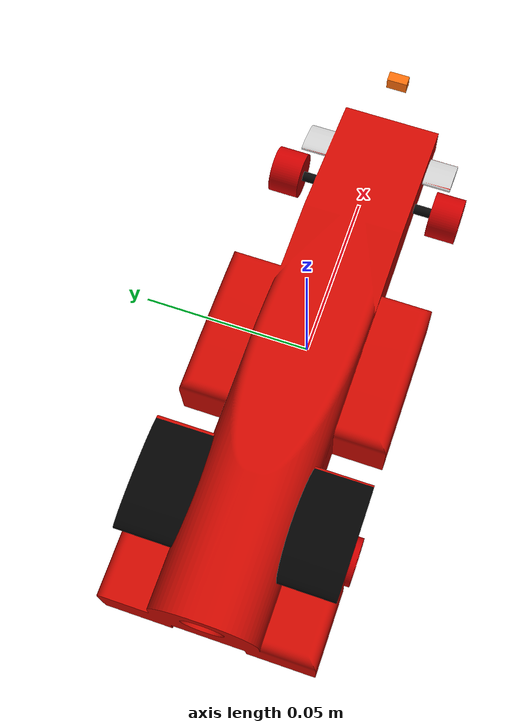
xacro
<?xml version="1.0"?>
<!-- source: https://github.com/srmainwaring/steer_bot/blob/master/steer_bot_description/urdf/wheel.xacro: -->

<robot name="f1_car" xmlns:xacro="http://wiki.ros.org/xacro">

  <!-- Include xacro for inertials, materials, wheels and camera -->
  <xacro:include filename="$(find race_car_description)/urdf/wheel.xacro"/>
  <xacro:include filename="$(find race_car_description)/urdf/camera.xacro"/>

  <xacro:property name="robot_namespace" value="/"/>

  <!-- Gazebo plugins -->
  <gazebo>
    <!-- Load ros_control plugin using the steer_bot_hardware_gazebo
    implementation of the hardware_interface::RobotHW -->
    <plugin name="gazebo_ros_control" filename="libgazebo_ros_control.so">
      <robotNamespace>${robot_namespace}</robotNamespace>
      <robotSimType>steer_bot_hardware_gazebo/SteerBotHardwareGazebo</robotSimType>
      <legacyModeNS>false</legacyModeNS>
    </plugin>
  </gazebo>

  <!-- Math constants -->
  <xacro:property name="deg_to_rad" value="0.01745329251994329577"/>
  <xacro:property name="mass_multiplier" value="1"/>
  <xacro:property name="scale" value="32"/>

  <!-- Robot base dimensions -->
  <xacro:property name="base_length" value="${5.5 / scale}" />
  <xacro:property name="base_width" value="${2.0 / scale}" />
  <xacro:property name="base_height" value="${1.0 / scale}" />
  <xacro:property name="base_mass" value="${850 / (scale*scale*scale) * mass_multiplier}" />

  <!-- Wheel link dimensions -->
  <xacro:property name="wheel_radius" value="${18*0.0254/2 / scale}" />
  <xacro:property name="wheel_thickness" value="${0.35 / scale}" />
  <xacro:property name="wheel_mass" value="${10.5 / (scale*scale*scale) * mass_multiplier}" />

  <!-- Steering link dimensions -->
  <xacro:property name="steer_radius" value="${wheel_radius / 2}" />
  <xacro:property name="steer_thickness" value="${wheel_thickness / 4}" />
  <xacro:property name="steer_mass" value="${10.5 / (scale*scale*scale) * mass_multiplier}" />

  <!-- Axle positions -->
  <xacro:property name="wheelbase" value="${3.6 / scale}" />
  <xacro:property name="ride_height" value="${0.032 / scale}" />

  <xacro:property name="axle_offset_rear" value="${1.050 / scale}" />
  <xacro:property name="axle_offset_front" value="${base_length - axle_offset_rear - wheelbase}" />
  <xacro:property name="axle_height" value="${-base_height/2 - ride_height + wheel_radius}" />
  <xacro:property name="steer_offset" value="${steer_thickness}" />

  <!-- Camera dimensions -->
	<xacro:property name="camera_size" value="${0.2 / scale}"/>
	<xacro:property name="camera_width" value="${camera_size}"/>
	<xacro:property name="camera_thickness" value="${camera_size/2}"/>
	<xacro:property name="camera_height" value="${camera_size*2/3}"/>
	<xacro:property name="camera_mass" value="${1 / (scale*scale*scale) * mass_multiplier}"/>
	<xacro:property name="camera_forward_tilt_deg" value="0"/>
	<xacro:property name="camera_y" value="0"/>
	<xacro:property name="camera_x" value="${base_length/2 + camera_thickness/2}"/>
	<xacro:property name="camera_z" value="${base_height/2-camera_height/2}"/>

  <!-- Base link -->
  <link name="base_link">
    <visual>
      <origin xyz="0 0 0" rpy="0 0 0"/>
      <geometry>
        <mesh filename="package://race_car_gazebo/meshes/f1_car_body.dae"/>
      </geometry>
    </visual>
    <collision>
      <origin xyz="0 0 0" rpy="0 0 0"/>
      <geometry>
        <box size="${base_length} ${base_width} ${base_height}"/>
      </geometry>
    </collision>
    <xacro:solid_cuboid_inertial
        rpy="0 0 0" xyz="0 0 0"
        mass="${base_mass}"
        x="${base_length}" y="${base_width}" z="${base_height}" />
  </link>
  <!-- Colour -->

  <!-- Camera -->
  <xacro:camera
    parent="base_link"
    camera_width="${camera_width}"
    camera_thickness="${camera_thickness}"
    camera_height="${camera_height}"
    forward_tilt="${camera_forward_tilt_deg}">
    <origin xyz="${camera_x} ${camera_y} ${camera_z}"
            rpy="0 ${camera_forward_tilt_deg * deg_to_rad} 0"/>
  </xacro:camera>

  <!-- Front steer and rear wheel joints required for ackermann_steering_controller -->
  <xacro:front_steer
    name="front"
    parent="base"
    steer_radius="${steer_radius}"
    steer_thickness="${steer_thickness}"
    steer_mass="${steer_mass}"
    base_length="${base_length}"
    base_width="${base_width}"
    axle_offset="${axle_offset_front}"
    steer_height="${base_height/2+steer_offset}">
    <!-- steer_height="${wheel_radius+steer_offset}"> -->
  </xacro:front_steer>

  <xacro:rear_wheel
    name="rear"
    parent="base"
    wheel_radius="${wheel_radius}"
    wheel_thickness="${wheel_thickness}"
    wheel_mass="${wheel_mass}">
    <origin xyz="${-base_length/2+axle_offset_rear} 0 ${axle_height}" rpy="${-90 * deg_to_rad} 0 0"/>
  </xacro:rear_wheel>

  <!-- Steerable front wheels -->
  <xacro:front_wheel_lr
    name="front_right"
    parent="base"
    reflect="-1"
    wheel_radius="${wheel_radius}"
    wheel_thickness="${wheel_thickness}"
    wheel_mass="${wheel_mass}"
    steer_radius="${steer_radius}"
    steer_thickness="${steer_thickness}"
    steer_mass="${steer_mass}"
    base_length="${base_length}"
    base_width="${base_width}"
    axle_offset="${axle_offset_front}"
    steer_height="${base_height/2+steer_offset}"
    axle_height = "${axle_height}">
  </xacro:front_wheel_lr>
  <xacro:front_wheel_lr
    name="front_left"
    parent="base"
    reflect="1"
    wheel_radius="${wheel_radius}"
    wheel_thickness="${wheel_thickness}"
    wheel_mass="${wheel_mass}"
    steer_radius="${steer_radius}"
    steer_thickness="${steer_thickness}"
    steer_mass="${steer_mass}"
    base_length="${base_length}"
    base_width="${base_width}"
    axle_offset="${axle_offset_front}"
    steer_height="${base_height/2+steer_offset}"
    axle_height = "${axle_height}">
  </xacro:front_wheel_lr>

  <!-- Rear wheels -->
  <xacro:rear_wheel_lr
    name="rear_right"
    parent="base"
    reflect="-1"
    wheel_radius="${wheel_radius}"
    wheel_thickness="${wheel_thickness}"
    wheel_mass="${wheel_mass}"
    base_length="${base_length}"
    base_width="${base_width}"
    axle_offset="${axle_offset_rear}"
    axle_height="${axle_height}">
  </xacro:rear_wheel_lr>
  <xacro:rear_wheel_lr
    name="rear_left"
    parent="base"
    reflect="1"
    wheel_radius="${wheel_radius}"
    wheel_thickness="${wheel_thickness}"
    wheel_mass="${wheel_mass}"
    base_length="${base_length}"
    base_width="${base_width}"
    axle_offset="${axle_offset_rear}"
    axle_height="${axle_height}">
  </xacro:rear_wheel_lr>

</robot>

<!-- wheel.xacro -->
<!-- source: https://github.com/srmainwaring/steer_bot/blob/master/steer_bot_description/urdf/wheel.xacro: -->

<robot name="wheel" xmlns:xacro="http://wiki.ros.org/xacro">
  <!-- Include xacro for materials and inertials -->
  <xacro:include filename="$(find race_car_description)/urdf/materials.xacro"/>
  <xacro:include filename="$(find race_car_description)/urdf/inertials.xacro"/>

  <!-- Properties -->
  <xacro:property name="steer_effort" value="10.0"/>
  <xacro:property name="steer_velocity" value="5.0"/>
  <xacro:property name="steer_limit_deg" value="30.0"/>

  <!-- Bicycle model front steering link (required for steer_drive_controller) -->
  <xacro:macro name="front_steer"
    params="
      name
      parent
      steer_radius
      steer_thickness
      steer_mass
      base_length
      base_width
      axle_offset
      steer_height">
    <link name="${name}_steer_link">
      <collision>
        <origin xyz="0 0 0" rpy="0 0 0"/>
        <geometry>
          <cylinder radius="${steer_radius}" length="${steer_thickness}"/>
        </geometry>
      </collision>
      <xacro:solid_cylinder_inertial
          rpy="0 0 0" xyz="0 0 0"
          mass="${steer_mass}"
          radius="${steer_radius}" length="${steer_thickness}" />
    </link>

    <joint name="${name}_steer_joint" type="revolute">
      <parent link="${parent}_link"/>
      <child link="${name}_steer_link"/>
      <origin xyz="${base_length/2-axle_offset} 0 ${steer_height}" rpy="0 0 0"/>
      <axis xyz="0 0 1"/>
      <limit effort="${steer_effort}"
             lower="${steer_limit_deg * deg_to_rad * -1.0}" upper="${steer_limit_deg * deg_to_rad}"
             velocity="${steer_velocity}"/>
             <!-- lower="${-180.0 * deg_to_rad}" upper="${180.0 * deg_to_rad}" -->
    </joint>

  </xacro:macro>

  <!-- Car steering model front (steerable) wheel links (left/right) -->
  <xacro:macro name="front_wheel_lr"
    params="
      name
      parent
      reflect
      wheel_radius
      wheel_thickness
      wheel_mass
      steer_radius
      steer_thickness
      steer_mass
      base_length
      base_width
      axle_offset
      steer_height
      axle_height">
    <link name="${name}_steer_link">
      <collision>
        <origin xyz="0 0 0" rpy="0 0 0"/>
        <geometry>
          <cylinder radius="${steer_radius}" length="${steer_thickness}"/>
        </geometry>
      </collision>
      <xacro:solid_cylinder_inertial
          rpy="0 0 0" xyz="0 0 0"
          mass="${steer_mass}"
          radius="${steer_radius}" length="${steer_thickness}" />
    </link>

    <joint name="${name}_steer_joint" type="revolute">
      <parent link="${parent}_link"/>
      <child link="${name}_steer_link"/>
      <origin xyz="${base_length/2-axle_offset} ${reflect*(base_width/2-wheel_thickness/2)} ${steer_height}" rpy="0 0 0"/>
      <axis xyz="0 0 1"/>
      <limit effort="${steer_effort}"
             lower="${steer_limit_deg * deg_to_rad * -1.0}" upper="${steer_limit_deg * deg_to_rad}"
             velocity="${steer_velocity}"/>
    </joint>

    <link name="${name}_wheel_link">
      <visual>
        <origin xyz="0 0 0" rpy="${(1-reflect)/2 * 180 * deg_to_rad} 0 0"/>
        <geometry>
          <mesh filename="package://race_car_gazebo/meshes/f1_car_wheel_front.dae"/>
        </geometry>
        <material name="red" />
      </visual>
      <collision>
        <origin xyz="0 0 0" rpy="0 0 0"/>
        <geometry>
          <cylinder radius="${wheel_radius}" length="${wheel_thickness}"/>
        </geometry>
      </collision>
      <xacro:solid_cylinder_inertial
          rpy="0 0 0" xyz="0 0 0"
          mass="${wheel_mass}"
          radius="${wheel_radius}" length="${wheel_thickness}" />
    </link>

    <joint name="${name}_wheel_joint" type="continuous">
      <parent link="${name}_steer_link"/>
      <child link="${name}_wheel_link"/>
      <origin xyz="0 0 ${-steer_height + axle_height}" rpy="${-90 * deg_to_rad} 0 0"/>
      <axis xyz="0 0 1"/>
    </joint>

    <gazebo reference="${name}_wheel_link">
      <mu1 value="1.5"/>
			<mu2 value="1.5"/>
			<kp value="100000.0" />
			<kd value="10.0" />
			<fdir1 value="1 0 0"/>
      <dampingFactor value="0.70"/>
    </gazebo>
  </xacro:macro>

  <!-- Bicycle model rear wheel link (required for steer_drive_controller) -->
  <xacro:macro name="rear_wheel"
    params="
      name
      parent
      wheel_radius
      wheel_thickness
      wheel_mass
      *origin">
    <link name="${name}_wheel_link">
      <collision>
        <origin xyz="0 0 0" rpy="0 0 0"/>
        <geometry>
          <cylinder radius="${wheel_radius}" length="${wheel_thickness}"/>
        </geometry>
      </collision>
      <xacro:solid_cylinder_inertial
          rpy="0 0 0" xyz="0 0 0"
          mass="${wheel_mass}"
          radius="${wheel_radius}" length="${wheel_thickness}" />
    </link>

    <joint name="${name}_wheel_joint" type="continuous">
      <parent link="${parent}_link"/>
      <child link="${name}_wheel_link"/>
      <xacro:insert_block name="origin"/>
      <axis xyz="0 0 1"/>
    </joint>

  </xacro:macro>

  <!-- Bicycle model front wheel link (passive - no transmission) -->
  <xacro:macro name="front_wheel"
    params="
      name
      parent
      wheel_radius
      wheel_thickness
      wheel_mass
      *origin">
    <link name="${name}_wheel_link">
      <visual>
        <origin xyz="0 0 0" rpy="0 0 0"/>
        <geometry>
          <cylinder radius="${wheel_radius}" length="${wheel_thickness}"/>
        </geometry>
        <material name="yellow" />
      </visual>
      <collision>
        <origin xyz="0 0 0" rpy="0 0 0"/>
        <geometry>
          <cylinder radius="${wheel_radius}" length="${wheel_thickness}"/>
        </geometry>
      </collision>
      <xacro:solid_cylinder_inertial
          rpy="0 0 0" xyz="0 0 0"
          mass="${wheel_mass}"
          radius="${wheel_radius}" length="${wheel_thickness}" />
    </link>

    <joint name="${name}_wheel_joint" type="continuous">
      <parent link="${parent}_link"/>
      <child link="${name}_wheel_link"/>
      <xacro:insert_block name="origin"/>
      <axis xyz="0 0 1"/>
    </joint>

    <gazebo reference="${name}_wheel_link">
      <material>Gazebo/Yellow</material>
    </gazebo>

    <gazebo reference="${name}_wheel_joint">
      <provideFeedback>true</provideFeedback>
    </gazebo>
  </xacro:macro>

  <!-- Car steering model rear wheel links (left/right) -->
  <xacro:macro name="rear_wheel_lr"
    params="
      name
      parent
      reflect
      wheel_radius
      wheel_thickness
      wheel_mass
      base_length
      base_width
      axle_offset
      axle_height">
      <!-- *origin"> -->
    <link name="${name}_wheel_link">
      <visual>
        <origin xyz="0 0 0" rpy="${(1-reflect)/2 * 180 * deg_to_rad} 0 0"/>
        <geometry>
          <mesh filename="package://race_car_gazebo/meshes/f1_car_wheel_rear.dae"/>
        </geometry>
        <material name="red" />
      </visual>
      <collision>
        <origin xyz="0 0 0" rpy="0 0 0"/>
        <geometry>
          <cylinder radius="${wheel_radius}" length="${wheel_thickness}"/>
        </geometry>
      </collision>
      <xacro:solid_cylinder_inertial
          rpy="0 0 0" xyz="0 0 0"
          mass="${wheel_mass}"
          radius="${wheel_radius}" length="${wheel_thickness}" />
    </link>

    <joint name="${name}_wheel_joint" type="continuous">
      <parent link="${parent}_link"/>
      <child link="${name}_wheel_link"/>
      <origin xyz="${-base_length/2+axle_offset_rear} ${reflect * (+base_width/2-wheel_thickness/2)} ${axle_height}"
              rpy="${-90 * deg_to_rad} 0 0"/>
      <axis xyz="0 0 1"/>
    </joint>

    <gazebo reference="${name}_wheel_link">
      <mu1 value="1.5"/>
			<mu2 value="1.5"/>
			<kp value="100000.0" />
			<kd value="10.0" />
			<fdir1 value="1 0 0"/>
      <dampingFactor value="0.70"/>
    </gazebo>
  </xacro:macro>
</robot>

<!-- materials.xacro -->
<robot name="materials" xmlns:xacro="http://wiki.ros.org/xacro">
  <xacro:property name="include_guard_materials" default="true"/>
  <xacro:if value="${include_guard_materials}">
  <xacro:property name="include_guard_materials" value="false"/>

  <material name="black">
    <color rgba="0.0 0.0 0.0 1.0"/>
  </material>

  <material name="dark_gray">
      <color rgba="0.5 0.5 0.5 1"/>
  </material>

  <material name="gray">
      <color rgba="0.753 0.753 0.753 1"/>
  </material>

  <material name="silver">
      <color rgba="0.88 0.88 0.88 1"/>
  </material>

  <material name="white">
    <color rgba="1.0 1.0 1.0 1.0"/>
  </material>

  <material name="red">
    <color rgba="0.8 0.0 0.0 1.0"/>
  </material>

  <material name="green">
    <color rgba="0.0 0.8 0.0 1.0"/>
  </material>

  <material name="blue">
    <color rgba="0.0 0.0 0.8 1.0"/>
  </material>

  <material name="orange">
    <color rgba="${255/255} ${108/255} ${10/255} 1.0"/>
  </material>

  <material name="yellow">
    <color rgba="${204/255} ${204/255} ${0/255} 1"/>
  </material>

  <material name="brown">
    <color rgba="${222/255} ${207/255} ${195/255} 1.0"/>
  </material>

  </xacro:if>
</robot>

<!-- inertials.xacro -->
<!-- source: https://github.com/srmainwaring/steer_bot/blob/master/steer_bot_description/urdf/inertials.xacro: -->

<!--  xacro macros for inertials.

    Define xacro macros for math constants and inertials:

    - solid cuboid
    - solid cylinder
    - null (a placeholder inertial for logical link elements)
 -->

<robot name="inertials" xmlns:xacro="http://wiki.ros.org/xacro">
    <xacro:property name="include_guard_inertials" default="true"/>
    <xacro:if value="${include_guard_inertials}">
    <xacro:property name="include_guard_inertials" value="false"/>

    <!-- Math constants -->
    <xacro:property name="math_pi"        value="3.141592653589793" />
    <xacro:property name="math_pi_over_2" value="1.5707963267948966" />
    <xacro:property name="math_pi_over_4" value="0.785398163397448" />

    <!-- Inertial for solid cuboid with dimensions x y z  -->
    <xacro:macro name="solid_cuboid_inertial" params="rpy xyz mass x y z">
        <inertial>
            <origin rpy="${rpy}" xyz="${xyz}"/>
            <mass value="${mass}" />
            <inertia
                ixx="${mass * (y * y + z * z) / 12.0}" ixy="0.0" ixz="0.0"
                iyy="${mass * (x * x + z * z) / 12.0}" iyz="0.0"
                izz="${mass * (x * x + y * y) / 12.0}" />
        </inertial>
    </xacro:macro>

    <!-- Inertial for solid cylinder with radius and length aligned to z-axis  -->
    <xacro:macro name="solid_cylinder_inertial" params="rpy xyz mass radius length">
        <inertial>
            <origin rpy="${rpy}" xyz="${xyz}"/>
            <mass value="${mass}" />
            <inertia
                ixx="${mass * (3.0 * radius * radius + length * length) / 12.0}" ixy="0.0" ixz="0.0"
                iyy="${mass * (3.0 * radius * radius + length * length) / 12.0}" iyz="0.0"
                izz="${mass * (radius * radius) / 2.0}" />
        </inertial>
    </xacro:macro>

    <!-- A null inertial - used in placeholder links to esure the model will work in Gazebo -->
    <xacro:macro name="null_inertial">
        <inertial>
            <mass value="0.001"/>
            <inertia ixx="0.001" ixy="0" ixz="0" iyy="0.001" iyz="0" izz="0.001"/>
        </inertial>
    </xacro:macro>

    </xacro:if>
</robot>

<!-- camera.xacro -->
<robot name="camera" xmlns:xacro="http://wiki.ros.org/xacro">
  <!-- Include xacro for materials and inertials -->
  <xacro:include filename="$(find race_car_description)/urdf/materials.xacro"/>
  <xacro:include filename="$(find race_car_description)/urdf/inertials.xacro"/>

  <xacro:macro name="camera"
		params="
			parent
			camera_width
			camera_thickness
			camera_height
			forward_tilt
			*origin">

		<!-- Camera link -->
		<link name="camera_link">
      <collision>
        <origin xyz="0 0 0" rpy="0 0 0"/>
        <geometry>
          <box size="${camera_thickness} ${camera_width} ${camera_height}"/>
        </geometry>
      </collision>
      <visual>
        <origin xyz="0 0 0" rpy="0 0 0"/>
        <geometry>
          <box size="${camera_thickness} ${camera_width} ${camera_height}"/>
        </geometry>
        <material name="orange"/>
      </visual>
      <xacro:solid_cuboid_inertial
        rpy="0 0 0" xyz="0 0 0"
        mass="${camera_mass}"
        x="${camera_thickness}" y="${camera_width}" z="${camera_height}" />
    </link>
		<gazebo reference="camera_link">
      <material>Gazebo/Orange</material>
    </gazebo>

		<!-- Camera joint -->
		<joint name="camera_joint" type="fixed">
				<parent link="${parent}" />
				<child link="camera_link" />
				<xacro:insert_block name="origin"/>
		</joint>
		<gazebo reference="camera_joint">
				<preserveFixedJoint>true</preserveFixedJoint>
		</gazebo>

		<!-- Optical -->
		<link name="camera_optical_link">
  	</link>

		<joint name="camera_optical_joint" type="fixed">
			<parent link="camera_link"/>
			<child link="camera_optical_link"/>
			<origin xyz="0 0 0" rpy="${-(90) * deg_to_rad} 0 ${-math_pi_over_2}"/>
  	</joint>
		<gazebo reference="camera_optical_joint">
				<preserveFixedJoint>true</preserveFixedJoint>
		</gazebo>

		<!-- Camera plugin -->
		<gazebo reference="camera_link">
			<sensor type="camera" name="camera1">
				<update_rate>30.0</update_rate>
				<visualize>false</visualize>
				<camera name="head">
					<!-- FOV: 80 degrees -->
					<horizontal_fov>1.3962634</horizontal_fov>
					<image>
						<width>640</width>
						<height>480</height>
						<format>R8G8B8</format>
					</image>
					<clip>
						<near>0.01</near>
						<far>25</far>
					</clip>
					<noise>
						<type>gaussian</type>
						<!-- Noise is sampled independently per pixel on each frame.
              	 That pixel's noise value is added to each of its color
              	 channels, which at that point lie in the range [0,1]. -->
							<mean>0.0</mean>
							<stddev>0.007</stddev>
					</noise>
				</camera>
				<plugin name="camera_controller" filename="libgazebo_ros_camera.so">
					<alwaysOn>true</alwaysOn>
					<updateRate>0.0</updateRate>
					<cameraName>head_camera</cameraName>
					<imageTopicName>image_raw</imageTopicName>
					<cameraInfoTopicName>camera_info</cameraInfoTopicName>
					<frameName>camera_optical_link</frameName>
					<hackBaseline>0.07</hackBaseline>
					<distortionK1>0.0</distortionK1>
					<distortionK2>0.0</distortionK2>
					<distortionK3>0.0</distortionK3>
					<distortionT1>0.0</distortionT1>
					<distortionT2>0.0</distortionT2>
				</plugin>
			</sensor>
		</gazebo>
	</xacro:macro>
</robot>
